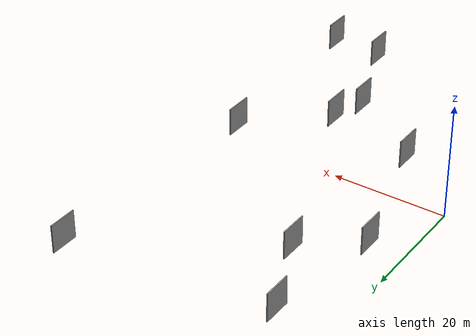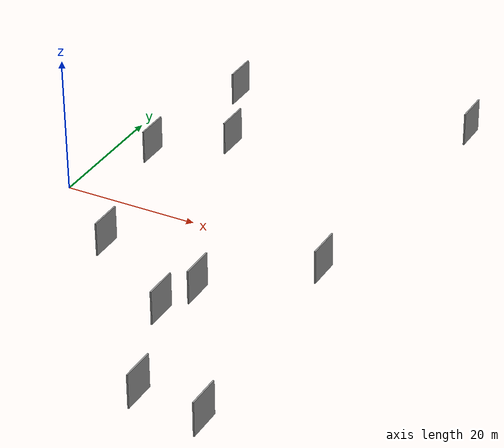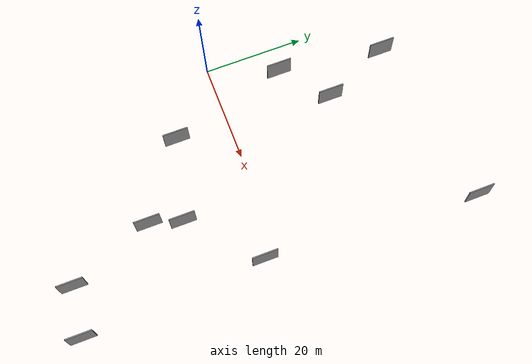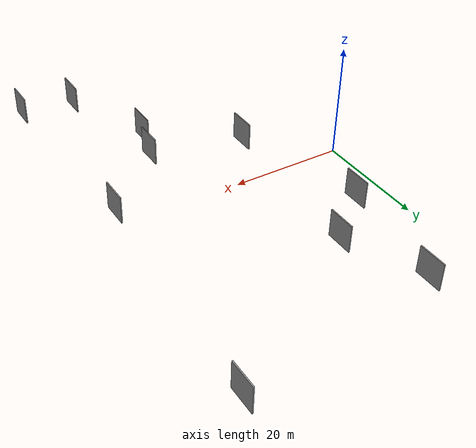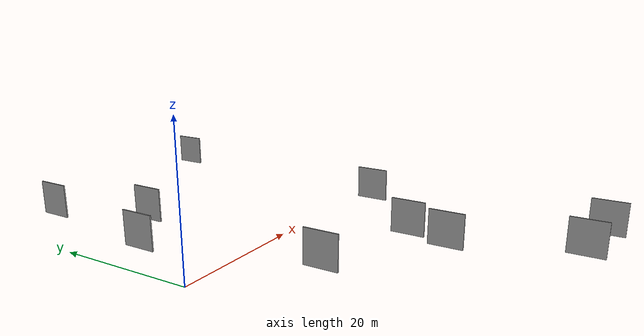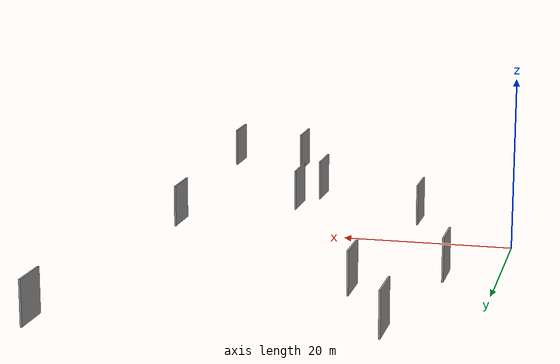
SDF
<sdf version="1.6">
 <world name="default">
  <scene>
   <sky><clouds><speed>12</speed></clouds></sky>
   <ambient>0.4 0.4 0.4 1</ambient>
   <background>0.7 0.7 0.7 1</background>
   <shadows>1</shadows>
  </scene>
  <gravity>0 0 -9.8066</gravity>
  <magnetic_field>6e-06 2.3e-05 -4.2e-05</magnetic_field>
  <physics default="0" name="default_physics" type="ode">
   <ode>
    <solver>
     <type>quick</type>
     <iters>10</iters>
     <sor>1.0</sor>
     <use_dynamic_moi_rescaling>0</use_dynamic_moi_rescaling>
    </solver>
    <constraints>
     <cfm>0</cfm>
     <erp>0.2</erp>
     <contact_max_correcting_vel>100</contact_max_correcting_vel>
     <contact_surface_layer>0.001</contact_surface_layer>
    </constraints>
   </ode>
   <max_step_size>0.004</max_step_size>
   <real_time_factor>1</real_time_factor>
   <real_time_update_rate>250</real_time_update_rate>
  </physics>
  <light name="sun" type="directional">
   <pose>0 0 10 0 0 0</pose>
   <diffuse>0.8 0.8 0.8 1</diffuse>
   <specular>0.2 0.2 0.2 1</specular>
   <attenuation>
    <range>1000</range>
    <constant>0.9</constant>
    <linear>0.01</linear>
    <quadratic>0.001</quadratic>
   </attenuation>
   <direction>-0.5 0.1 -0.9</direction>
  </light>
  <model name="grey_wall_1">
   <static>1</static>
   <pose>14.7571 20.8493 0.0 0.000000 0.000000 1.570796</pose>
   <link name="link">
    <pose>0 0 2.50 0 0 0</pose>
    <collision name="collision"><geometry><box><size>5.00 0.2 5.00</size></box></geometry></collision>
    <visual name="visual">
     <cast_shadows>0</cast_shadows>
     <geometry><box><size>5.00 0.2 5.00</size></box></geometry>
     <material>
      <script>
       <uri>model://grey_wall/materials/scripts</uri>
       <uri>model://grey_wall/materials/textures</uri>
       <name>vrc/grey_wall</name>
      </script>
     </material>
    </visual>
   </link>
  </model>
  <model name="grey_wall_2">
   <static>1</static>
   <pose>43.3654 -38.7747 0.0 0.000000 0.000000 1.570796</pose>
   <link name="link">
    <pose>0 0 2.50 0 0 0</pose>
    <collision name="collision"><geometry><box><size>5.00 0.2 5.00</size></box></geometry></collision>
    <visual name="visual">
     <cast_shadows>0</cast_shadows>
     <geometry><box><size>5.00 0.2 5.00</size></box></geometry>
     <material>
      <script>
       <uri>model://grey_wall/materials/scripts</uri>
       <uri>model://grey_wall/materials/textures</uri>
       <name>vrc/grey_wall</name>
      </script>
     </material>
    </visual>
   </link>
  </model>
  <model name="grey_wall_3">
   <static>1</static>
   <pose>5.7647 13.3833 0.0 0.000000 0.000000 1.570796</pose>
   <link name="link">
    <pose>0 0 2.50 0 0 0</pose>
    <collision name="collision"><geometry><box><size>5.00 0.2 5.00</size></box></geometry></collision>
    <visual name="visual">
     <cast_shadows>0</cast_shadows>
     <geometry><box><size>5.00 0.2 5.00</size></box></geometry>
     <material>
      <script>
       <uri>model://grey_wall/materials/scripts</uri>
       <uri>model://grey_wall/materials/textures</uri>
       <name>vrc/grey_wall</name>
      </script>
     </material>
    </visual>
   </link>
  </model>
  <model name="grey_wall_4">
   <static>1</static>
   <pose>27.2001 -21.0788 0.0 0.000000 0.000000 1.570796</pose>
   <link name="link">
    <pose>0 0 2.50 0 0 0</pose>
    <collision name="collision"><geometry><box><size>5.00 0.2 5.00</size></box></geometry></collision>
    <visual name="visual">
     <cast_shadows>0</cast_shadows>
     <geometry><box><size>5.00 0.2 5.00</size></box></geometry>
     <material>
      <script>
       <uri>model://grey_wall/materials/scripts</uri>
       <uri>model://grey_wall/materials/textures</uri>
       <name>vrc/grey_wall</name>
      </script>
     </material>
    </visual>
   </link>
  </model>
  <model name="grey_wall_5">
   <static>1</static>
   <pose>41.3851 -3.0713 0.0 0.000000 0.000000 1.570796</pose>
   <link name="link">
    <pose>0 0 2.50 0 0 0</pose>
    <collision name="collision"><geometry><box><size>5.00 0.2 5.00</size></box></geometry></collision>
    <visual name="visual">
     <cast_shadows>0</cast_shadows>
     <geometry><box><size>5.00 0.2 5.00</size></box></geometry>
     <material>
      <script>
       <uri>model://grey_wall/materials/scripts</uri>
       <uri>model://grey_wall/materials/textures</uri>
       <name>vrc/grey_wall</name>
      </script>
     </material>
    </visual>
   </link>
  </model>
  <model name="grey_wall_6">
   <static>1</static>
   <pose>29.0229 -14.8399 0.0 0.000000 0.000000 1.570796</pose>
   <link name="link">
    <pose>0 0 2.50 0 0 0</pose>
    <collision name="collision"><geometry><box><size>5.00 0.2 5.00</size></box></geometry></collision>
    <visual name="visual">
     <cast_shadows>0</cast_shadows>
     <geometry><box><size>5.00 0.2 5.00</size></box></geometry>
     <material>
      <script>
       <uri>model://grey_wall/materials/scripts</uri>
       <uri>model://grey_wall/materials/textures</uri>
       <name>vrc/grey_wall</name>
      </script>
     </material>
    </visual>
   </link>
  </model>
  <model name="grey_wall_7">
   <static>1</static>
   <pose>8.7995 34.2498 0.0 0.000000 0.000000 1.570796</pose>
   <link name="link">
    <pose>0 0 2.50 0 0 0</pose>
    <collision name="collision"><geometry><box><size>5.00 0.2 5.00</size></box></geometry></collision>
    <visual name="visual">
     <cast_shadows>0</cast_shadows>
     <geometry><box><size>5.00 0.2 5.00</size></box></geometry>
     <material>
      <script>
       <uri>model://grey_wall/materials/scripts</uri>
       <uri>model://grey_wall/materials/textures</uri>
       <name>vrc/grey_wall</name>
      </script>
     </material>
    </visual>
   </link>
  </model>
  <model name="grey_wall_8">
   <static>1</static>
   <pose>44.1902 39.1417 0.0 0.000000 0.000000 1.570796</pose>
   <link name="link">
    <pose>0 0 2.50 0 0 0</pose>
    <collision name="collision"><geometry><box><size>5.00 0.2 5.00</size></box></geometry></collision>
    <visual name="visual">
     <cast_shadows>0</cast_shadows>
     <geometry><box><size>5.00 0.2 5.00</size></box></geometry>
     <material>
      <script>
       <uri>model://grey_wall/materials/scripts</uri>
       <uri>model://grey_wall/materials/textures</uri>
       <name>vrc/grey_wall</name>
      </script>
     </material>
    </visual>
   </link>
  </model>
  <model name="grey_wall_9">
   <static>1</static>
   <pose>12.5750 -10.5632 0.0 0.000000 0.000000 1.570796</pose>
   <link name="link">
    <pose>0 0 2.50 0 0 0</pose>
    <collision name="collision"><geometry><box><size>5.00 0.2 5.00</size></box></geometry></collision>
    <visual name="visual">
     <cast_shadows>0</cast_shadows>
     <geometry><box><size>5.00 0.2 5.00</size></box></geometry>
     <material>
      <script>
       <uri>model://grey_wall/materials/scripts</uri>
       <uri>model://grey_wall/materials/textures</uri>
       <name>vrc/grey_wall</name>
      </script>
     </material>
    </visual>
   </link>
  </model>
  <model name="grey_wall_10">
   <static>1</static>
   <pose>33.6662 -37.6587 0.0 0.000000 0.000000 1.570796</pose>
   <link name="link">
    <pose>0 0 2.50 0 0 0</pose>
    <collision name="collision"><geometry><box><size>5.00 0.2 5.00</size></box></geometry></collision>
    <visual name="visual">
     <cast_shadows>0</cast_shadows>
     <geometry><box><size>5.00 0.2 5.00</size></box></geometry>
     <material>
      <script>
       <uri>model://grey_wall/materials/scripts</uri>
       <uri>model://grey_wall/materials/textures</uri>
       <name>vrc/grey_wall</name>
      </script>
     </material>
    </visual>
   </link>
  </model>
 </world>
</sdf>
